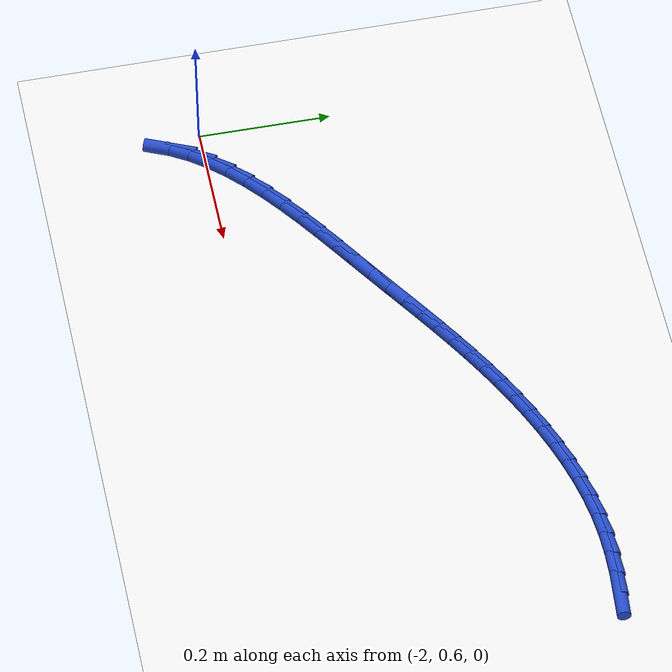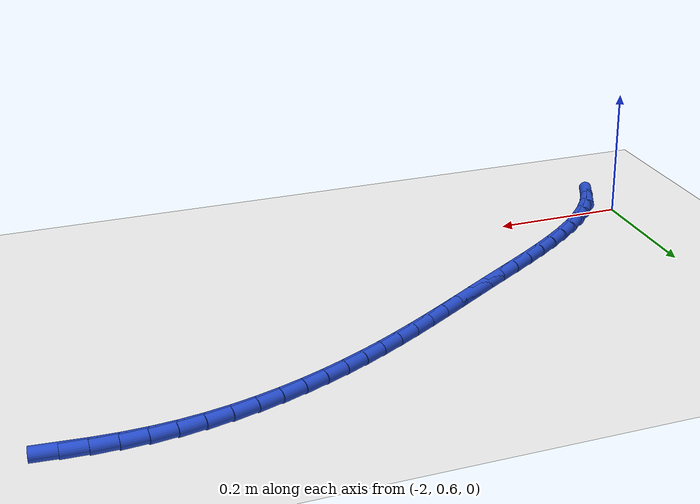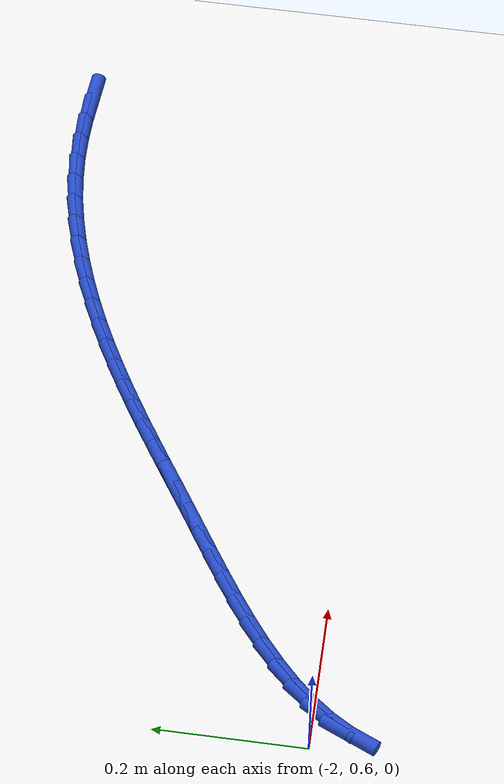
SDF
<sdf version="1.6">
 <world name="default">
  <model name="ground_plane">
   <static>1</static>
   <link name="link">
    <collision name="collision">
     <geometry><plane><normal>0 0 1</normal><size>100 100</size></plane></geometry>
     <surface><friction><ode><mu>100</mu><mu2>50</mu2></ode></friction></surface>
    </collision>
    <visual name="visual">
     <cast_shadows>0</cast_shadows>
     <geometry><plane><normal>0 0 1</normal><size>100 100</size></plane></geometry>
     <material>
      <script><uri>file://media/materials/scripts/gazebo.material</uri><name>Gazebo/WhiteGlow</name></script>
     </material>
    </visual>
   </link>
  </model>
  <model name="line">
   <link name="link_47">
    <pose>-1.053792118409889 1.024807196492332 0.01 0 1.57 -0.08526943565933354</pose>
    <collision name="collision">
     <geometry><cylinder><radius>0.01</radius><length>0.08</length></cylinder></geometry>
    </collision>
    <visual name="visual">
     <material>
      <script><name>Gazebo/Blue</name><uri>file://media/materials/scripts/gazebo.material</uri></script>
     </material>
     <geometry><cylinder><radius>0.01</radius><length>0.08</length></cylinder></geometry>
    </visual>
   </link>
   <link name="link_48">
    <pose>-1.0878257979821788 1.0277162830994477 0.01 0 1.57 -0.035552367277115714</pose>
    <collision name="collision">
     <geometry><cylinder><radius>0.01</radius><length>0.08</length></cylinder></geometry>
    </collision>
    <visual name="visual">
     <material>
      <script><name>Gazebo/Blue</name><uri>file://media/materials/scripts/gazebo.material</uri></script>
     </material>
     <geometry><cylinder><radius>0.01</radius><length>0.08</length></cylinder></geometry>
    </visual>
   </link>
   <link name="link_49">
    <pose>-1.1218485051177431 1.0289263807649724 0.01 0 1.57 0.019982654706154315</pose>
    <collision name="collision">
     <geometry><cylinder><radius>0.01</radius><length>0.08</length></cylinder></geometry>
    </collision>
    <visual name="visual">
     <material>
      <script><name>Gazebo/Blue</name><uri>file://media/materials/scripts/gazebo.material</uri></script>
     </material>
     <geometry><cylinder><radius>0.01</radius><length>0.08</length></cylinder></geometry>
    </visual>
   </link>
   <link name="link_50">
    <pose>-1.1558427452441067 1.02824699517243 0.01 0 1.57 0.08109651236743927</pose>
    <collision name="collision">
     <geometry><cylinder><radius>0.01</radius><length>0.08</length></cylinder></geometry>
    </collision>
    <visual name="visual">
     <material>
      <script><name>Gazebo/Blue</name><uri>file://media/materials/scripts/gazebo.material</uri></script>
     </material>
     <geometry><cylinder><radius>0.01</radius><length>0.08</length></cylinder></geometry>
    </visual>
   </link>
   <link name="link_51">
    <pose>-1.189790971372887 1.0254878611643579 0.01 0 1.57 0.14460756494542634</pose>
    <collision name="collision">
     <geometry><cylinder><radius>0.01</radius><length>0.08</length></cylinder></geometry>
    </collision>
    <visual name="visual">
     <material>
      <script><name>Gazebo/Blue</name><uri>file://media/materials/scripts/gazebo.material</uri></script>
     </material>
     <geometry><cylinder><radius>0.01</radius><length>0.08</length></cylinder></geometry>
    </visual>
   </link>
   <link name="link_52">
    <pose>-1.2236532232462742 1.0205567029755032 0.01 0 1.57 0.2033703355167204</pose>
    <collision name="collision">
     <geometry><cylinder><radius>0.01</radius><length>0.08</length></cylinder></geometry>
    </collision>
    <visual name="visual">
     <material>
      <script><name>Gazebo/Blue</name><uri>file://media/materials/scripts/gazebo.material</uri></script>
     </material>
     <geometry><cylinder><radius>0.01</radius><length>0.08</length></cylinder></geometry>
    </visual>
   </link>
   <link name="link_53">
    <pose>-1.257332332721897 1.0136113540830571 0.01 0 1.57 0.25663979868975917</pose>
    <collision name="collision">
     <geometry><cylinder><radius>0.01</radius><length>0.08</length></cylinder></geometry>
    </collision>
    <visual name="visual">
     <material>
      <script><name>Gazebo/Blue</name><uri>file://media/materials/scripts/gazebo.material</uri></script>
     </material>
     <geometry><cylinder><radius>0.01</radius><length>0.08</length></cylinder></geometry>
    </visual>
   </link>
   <link name="link_54">
    <pose>-1.290722135949428 1.0048489766287825 0.01 0 1.57 0.3048582976706738</pose>
    <collision name="collision">
     <geometry><cylinder><radius>0.01</radius><length>0.08</length></cylinder></geometry>
    </collision>
    <visual name="visual">
     <material>
      <script><name>Gazebo/Blue</name><uri>file://media/materials/scripts/gazebo.material</uri></script>
     </material>
     <geometry><cylinder><radius>0.01</radius><length>0.08</length></cylinder></geometry>
    </visual>
   </link>
   <link name="link_55">
    <pose>-1.3237164690785381 0.9944667327544424 0.01 0 1.57 0.34848342156612244</pose>
    <collision name="collision">
     <geometry><cylinder><radius>0.01</radius><length>0.08</length></cylinder></geometry>
    </collision>
    <visual name="visual">
     <material>
      <script><name>Gazebo/Blue</name><uri>file://media/materials/scripts/gazebo.material</uri></script>
     </material>
     <geometry><cylinder><radius>0.01</radius><length>0.08</length></cylinder></geometry>
    </visual>
   </link>
   <link name="link_56">
    <pose>-1.3562091682588984 0.9826617846018001 0.01 0 1.57 0.38796045394522594</pose>
    <collision name="collision">
     <geometry><cylinder><radius>0.01</radius><length>0.08</length></cylinder></geometry>
    </collision>
    <visual name="visual">
     <material>
      <script><name>Gazebo/Blue</name><uri>file://media/materials/scripts/gazebo.material</uri></script>
     </material>
     <geometry><cylinder><radius>0.01</radius><length>0.08</length></cylinder></geometry>
    </visual>
   </link>
   <link name="link_57">
    <pose>-1.3880940696401807 0.9696312943126184 0.01 0 1.57 0.4237067378511953</pose>
    <collision name="collision">
     <geometry><cylinder><radius>0.01</radius><length>0.08</length></cylinder></geometry>
    </collision>
    <visual name="visual">
     <material>
      <script><name>Gazebo/Blue</name><uri>file://media/materials/scripts/gazebo.material</uri></script>
     </material>
     <geometry><cylinder><radius>0.01</radius><length>0.08</length></cylinder></geometry>
    </visual>
   </link>
   <link name="link_58">
    <pose>-1.4192659630576607 0.9555719630279014 0.01 0 1.57 0.45608189640159075</pose>
    <collision name="collision">
     <geometry><cylinder><radius>0.01</radius><length>0.08</length></cylinder></geometry>
    </collision>
    <visual name="visual">
     <material>
      <script><name>Gazebo/Blue</name><uri>file://media/materials/scripts/gazebo.material</uri></script>
     </material>
     <geometry><cylinder><radius>0.01</radius><length>0.08</length></cylinder></geometry>
    </visual>
   </link>
   <link name="link_59">
    <pose>-1.4497053302204466 0.9406390694128214 0.01 0 1.57 0.48499546415280004</pose>
    <collision name="collision">
     <geometry><cylinder><radius>0.01</radius><length>0.08</length></cylinder></geometry>
    </collision>
    <visual name="visual">
     <material>
      <script><name>Gazebo/Blue</name><uri>file://media/materials/scripts/gazebo.material</uri></script>
     </material>
     <geometry><cylinder><radius>0.01</radius><length>0.08</length></cylinder></geometry>
    </visual>
   </link>
   <link name="link_60">
    <pose>-1.4795451030825684 0.9249141994204763 0.01 0 1.57 0.5101026659063499</pose>
    <collision name="collision">
     <geometry><cylinder><radius>0.01</radius><length>0.08</length></cylinder></geometry>
    </collision>
    <visual name="visual">
     <material>
      <script><name>Gazebo/Blue</name><uri>file://media/materials/scripts/gazebo.material</uri></script>
     </material>
     <geometry><cylinder><radius>0.01</radius><length>0.08</length></cylinder></geometry>
    </visual>
   </link>
   <link name="link_61">
    <pose>-1.5089339243716522 0.9084713445949403 0.01 0 1.57 0.5311398442823968</pose>
    <collision name="collision">
     <geometry><cylinder><radius>0.01</radius><length>0.08</length></cylinder></geometry>
    </collision>
    <visual name="visual">
     <material>
      <script><name>Gazebo/Blue</name><uri>file://media/materials/scripts/gazebo.material</uri></script>
     </material>
     <geometry><cylinder><radius>0.01</radius><length>0.08</length></cylinder></geometry>
    </visual>
   </link>
   <link name="link_62">
    <pose>-1.5380204368153285 0.8913844964802894 0.01 0 1.57 0.5479368123841477</pose>
    <collision name="collision">
     <geometry><cylinder><radius>0.01</radius><length>0.08</length></cylinder></geometry>
    </collision>
    <visual name="visual">
     <material>
      <script><name>Gazebo/Blue</name><uri>file://media/materials/scripts/gazebo.material</uri></script>
     </material>
     <geometry><cylinder><radius>0.01</radius><length>0.08</length></cylinder></geometry>
    </visual>
   </link>
   <link name="link_63">
    <pose>-1.5669532831412245 0.8737276466205984 0.01 0 1.57 0.5604111990578643</pose>
    <collision name="collision">
     <geometry><cylinder><radius>0.01</radius><length>0.08</length></cylinder></geometry>
    </collision>
    <visual name="visual">
     <material>
      <script><name>Gazebo/Blue</name><uri>file://media/materials/scripts/gazebo.material</uri></script>
     </material>
     <geometry><cylinder><radius>0.01</radius><length>0.08</length></cylinder></geometry>
    </visual>
   </link>
   <link name="link_64">
    <pose>-1.5958811060769706 0.8555747865599422 0.01 0 1.57 0.5685601439831506</pose>
    <collision name="collision">
     <geometry><cylinder><radius>0.01</radius><length>0.08</length></cylinder></geometry>
    </collision>
    <visual name="visual">
     <material>
      <script><name>Gazebo/Blue</name><uri>file://media/materials/scripts/gazebo.material</uri></script>
     </material>
     <geometry><cylinder><radius>0.01</radius><length>0.08</length></cylinder></geometry>
    </visual>
   </link>
   <link name="link_65">
    <pose>-1.6249525483501945 0.836999907842396 0.01 0 1.57 0.5724509035087524</pose>
    <collision name="collision">
     <geometry><cylinder><radius>0.01</radius><length>0.08</length></cylinder></geometry>
    </collision>
    <visual name="visual">
     <material>
      <script><name>Gazebo/Blue</name><uri>file://media/materials/scripts/gazebo.material</uri></script>
     </material>
     <geometry><cylinder><radius>0.01</radius><length>0.08</length></cylinder></geometry>
    </visual>
   </link>
   <link name="link_66">
    <pose>-1.6543162526885247 0.8180770020120348 0.01 0 1.57 0.5722114882028336</pose>
    <collision name="collision">
     <geometry><cylinder><radius>0.01</radius><length>0.08</length></cylinder></geometry>
    </collision>
    <visual name="visual">
     <material>
      <script><name>Gazebo/Blue</name><uri>file://media/materials/scripts/gazebo.material</uri></script>
     </material>
     <geometry><cylinder><radius>0.01</radius><length>0.08</length></cylinder></geometry>
    </visual>
   </link>
   <link name="link_67">
    <pose>-1.6841208618195904 0.7988800606129335 0.01 0 1.57 0.5682456371189241</pose>
    <collision name="collision">
     <geometry><cylinder><radius>0.01</radius><length>0.08</length></cylinder></geometry>
    </collision>
    <visual name="visual">
     <material>
      <script><name>Gazebo/Blue</name><uri>file://media/materials/scripts/gazebo.material</uri></script>
     </material>
     <geometry><cylinder><radius>0.01</radius><length>0.08</length></cylinder></geometry>
    </visual>
   </link>
   <link name="link_68">
    <pose>-1.714505467488925 0.7794796052700265 0.01 0 1.57 0.5666664859572857</pose>
    <collision name="collision">
     <geometry><cylinder><radius>0.01</radius><length>0.08</length></cylinder></geometry>
    </collision>
    <visual name="visual">
     <material>
      <script><name>Gazebo/Blue</name><uri>file://media/materials/scripts/gazebo.material</uri></script>
     </material>
     <geometry><cylinder><radius>0.01</radius><length>0.08</length></cylinder></geometry>
    </visual>
   </link>
   <link name="link_69">
    <pose>-1.745351982641816 0.7598527232752468 0.01 0 1.57 0.573781540912842</pose>
    <collision name="collision">
     <geometry><cylinder><radius>0.01</radius><length>0.08</length></cylinder></geometry>
    </collision>
    <visual name="visual">
     <material>
      <script><name>Gazebo/Blue</name><uri>file://media/materials/scripts/gazebo.material</uri></script>
     </material>
     <geometry><cylinder><radius>0.01</radius><length>0.08</length></cylinder></geometry>
    </visual>
   </link>
   <link name="link_70">
    <pose>-1.7762623990714401 0.7398748051783551 0.01 0 1.57 0.5899005058462293</pose>
    <collision name="collision">
     <geometry><cylinder><radius>0.01</radius><length>0.08</length></cylinder></geometry>
    </collision>
    <visual name="visual">
     <material>
      <script><name>Gazebo/Blue</name><uri>file://media/materials/scripts/gazebo.material</uri></script>
     </material>
     <geometry><cylinder><radius>0.01</radius><length>0.08</length></cylinder></geometry>
    </visual>
   </link>
   <link name="link_71">
    <pose>-1.8068245988780502 0.7194161154077297 0.01 0 1.57 0.6153923705280571</pose>
    <collision name="collision">
     <geometry><cylinder><radius>0.01</radius><length>0.08</length></cylinder></geometry>
    </collision>
    <visual name="visual">
     <material>
      <script><name>Gazebo/Blue</name><uri>file://media/materials/scripts/gazebo.material</uri></script>
     </material>
     <geometry><cylinder><radius>0.01</radius><length>0.08</length></cylinder></geometry>
    </visual>
   </link>
   <link name="link_72">
    <pose>-1.8366264641618983 0.6983469183917485 0.01 0 1.57 0.6510005567711977</pose>
    <collision name="collision">
     <geometry><cylinder><radius>0.01</radius><length>0.08</length></cylinder></geometry>
    </collision>
    <visual name="visual">
     <material>
      <script><name>Gazebo/Blue</name><uri>file://media/materials/scripts/gazebo.material</uri></script>
     </material>
     <geometry><cylinder><radius>0.01</radius><length>0.08</length></cylinder></geometry>
    </visual>
   </link>
   <link name="link_73">
    <pose>-1.865255877023238 0.6765374785587899 0.01 0 1.57 0.6978300374794848</pose>
    <collision name="collision">
     <geometry><cylinder><radius>0.01</radius><length>0.08</length></cylinder></geometry>
    </collision>
    <visual name="visual">
     <material>
      <script><name>Gazebo/Blue</name><uri>file://media/materials/scripts/gazebo.material</uri></script>
     </material>
     <geometry><cylinder><radius>0.01</radius><length>0.08</length></cylinder></geometry>
    </visual>
   </link>
   <link name="link_74">
    <pose>-1.8923007195623212 0.6538580603372315 0.01 0 1.57 0.7573099568522157</pose>
    <collision name="collision">
     <geometry><cylinder><radius>0.01</radius><length>0.08</length></cylinder></geometry>
    </collision>
    <visual name="visual">
     <material>
      <script><name>Gazebo/Blue</name><uri>file://media/materials/scripts/gazebo.material</uri></script>
     </material>
     <geometry><cylinder><radius>0.01</radius><length>0.08</length></cylinder></geometry>
    </visual>
   </link>
   <link name="link_75">
    <pose>-1.9173488738794011 0.6301789281554517 0.01 0 1.57 0.8310845415321725</pose>
    <collision name="collision">
     <geometry><cylinder><radius>0.01</radius><length>0.08</length></cylinder></geometry>
    </collision>
    <visual name="visual">
     <material>
      <script><name>Gazebo/Blue</name><uri>file://media/materials/scripts/gazebo.material</uri></script>
     </material>
     <geometry><cylinder><radius>0.01</radius><length>0.08</length></cylinder></geometry>
    </visual>
   </link>
   <link name="link_76">
    <pose>-1.9399882220747302 0.605370346441829 0.01 0 1.57 0.9207575955541076</pose>
    <collision name="collision">
     <geometry><cylinder><radius>0.01</radius><length>0.08</length></cylinder></geometry>
    </collision>
    <visual name="visual">
     <material>
      <script><name>Gazebo/Blue</name><uri>file://media/materials/scripts/gazebo.material</uri></script>
     </material>
     <geometry><cylinder><radius>0.01</radius><length>0.08</length></cylinder></geometry>
    </visual>
   </link>
   <link name="link_77">
    <pose>-1.9598066462485615 0.5793025796247409 0.01 0 1.57 1.0273996645319792</pose>
    <collision name="collision">
     <geometry><cylinder><radius>0.01</radius><length>0.08</length></cylinder></geometry>
    </collision>
    <visual name="visual">
     <material>
      <script><name>Gazebo/Blue</name><uri>file://media/materials/scripts/gazebo.material</uri></script>
     </material>
     <geometry><cylinder><radius>0.01</radius><length>0.08</length></cylinder></geometry>
    </visual>
   </link>
   <link name="link_78">
    <pose>-1.976392028501148 0.5518458921325656 0.01 0 1.57 1.1507764212607918</pose>
    <collision name="collision">
     <geometry><cylinder><radius>0.01</radius><length>0.08</length></cylinder></geometry>
    </collision>
    <visual name="visual">
     <material>
      <script><name>Gazebo/Blue</name><uri>file://media/materials/scripts/gazebo.material</uri></script>
     </material>
     <geometry><cylinder><radius>0.01</radius><length>0.08</length></cylinder></geometry>
    </visual>
   </link>
  </model>
 </world>
</sdf>
